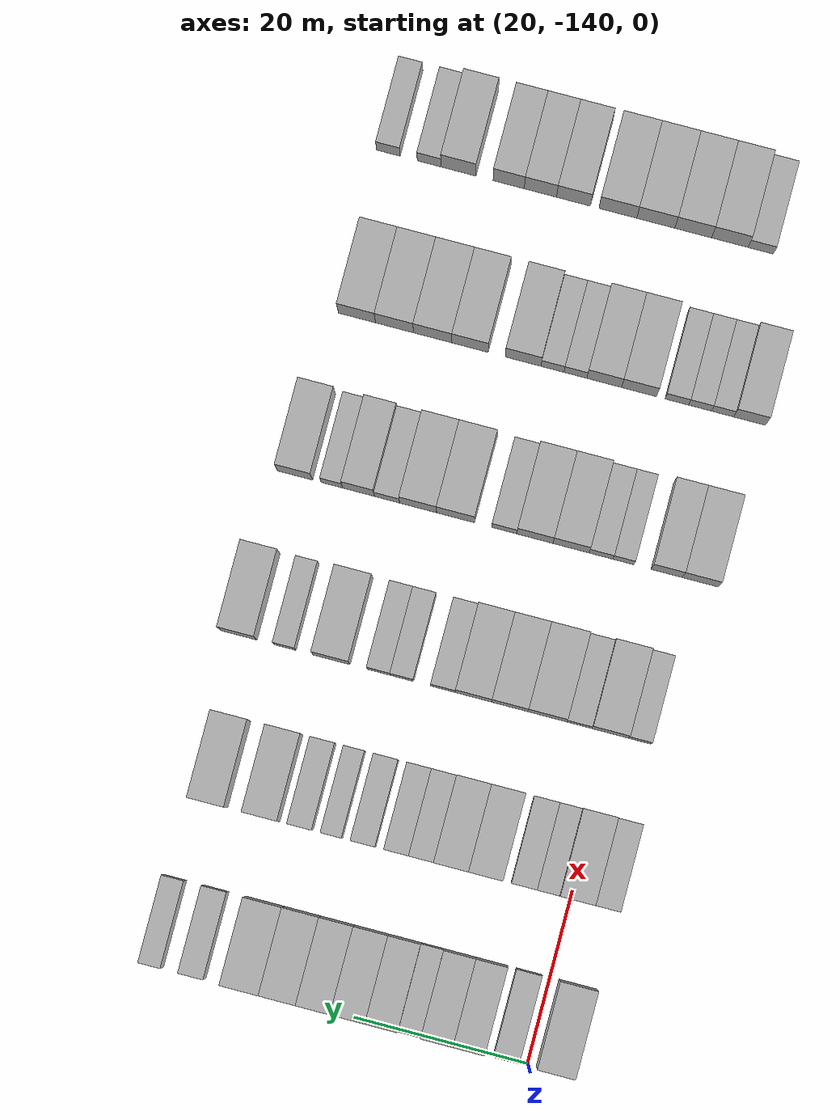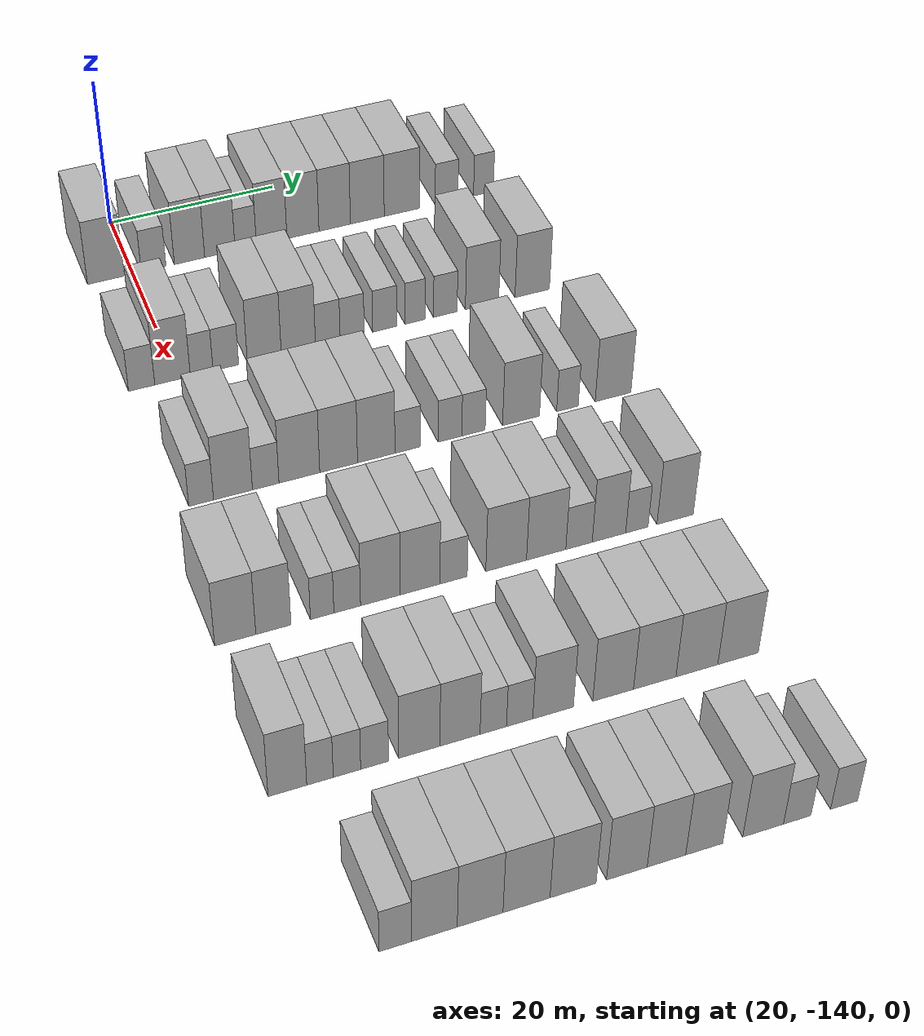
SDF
<sdf version="1.6">
 <world name="default">
  <model name="building_50">
   <static>1</static>
   <pose>25.0000 -143.1589 0 0.000000 0.000000 0.000000</pose>
   <link name="link">
    <pose>0 0 4.50 0 0 0</pose>
    <collision name="collision"><geometry><box><size>10.0000 4.3514 9.0000</size></box></geometry></collision>
    <visual name="visual">
     <cast_shadows>0</cast_shadows>
     <geometry><box><size>10.0000 4.3514 9.0000</size></box></geometry>
     <material>
      <script>
       <uri>model://HANNAS_wall/materials/scripts</uri>
       <uri>model://HANNAS_wall/materials/textures</uri>
       <name>vrc/HANNAS_wall</name>
      </script>
     </material>
    </visual>
   </link>
  </model>
  <model name="building_51">
   <static>1</static>
   <pose>25.0000 -137.5063 0 0.000000 0.000000 0.000000</pose>
   <link name="link">
    <pose>0 0 3.00 0 0 0</pose>
    <collision name="collision"><geometry><box><size>10.0000 2.9538 6.0000</size></box></geometry></collision>
    <visual name="visual">
     <cast_shadows>0</cast_shadows>
     <geometry><box><size>10.0000 2.9538 6.0000</size></box></geometry>
     <material>
      <script>
       <uri>model://HANNAS_wall/materials/scripts</uri>
       <uri>model://HANNAS_wall/materials/textures</uri>
       <name>vrc/HANNAS_wall</name>
      </script>
     </material>
    </visual>
   </link>
  </model>
  <model name="building_52">
   <static>1</static>
   <pose>25.0000 -133.2066 0 0.000000 0.000000 0.000000</pose>
   <link name="link">
    <pose>0 0 4.50 0 0 0</pose>
    <collision name="collision"><geometry><box><size>10.0000 3.6457 9.0000</size></box></geometry></collision>
    <visual name="visual">
     <cast_shadows>0</cast_shadows>
     <geometry><box><size>10.0000 3.6457 9.0000</size></box></geometry>
     <material>
      <script>
       <uri>model://HANNAS_wall/materials/scripts</uri>
       <uri>model://HANNAS_wall/materials/textures</uri>
       <name>vrc/HANNAS_wall</name>
      </script>
     </material>
    </visual>
   </link>
  </model>
  <model name="building_53">
   <static>1</static>
   <pose>25.0000 -129.5416 0 0.000000 0.000000 0.000000</pose>
   <link name="link">
    <pose>0 0 4.50 0 0 0</pose>
    <collision name="collision"><geometry><box><size>10.0000 3.6843 9.0000</size></box></geometry></collision>
    <visual name="visual">
     <cast_shadows>0</cast_shadows>
     <geometry><box><size>10.0000 3.6843 9.0000</size></box></geometry>
     <material>
      <script>
       <uri>model://HANNAS_wall/materials/scripts</uri>
       <uri>model://HANNAS_wall/materials/textures</uri>
       <name>vrc/HANNAS_wall</name>
      </script>
     </material>
    </visual>
   </link>
  </model>
  <model name="building_54">
   <static>1</static>
   <pose>25.0000 -126.4039 0 0.000000 0.000000 0.000000</pose>
   <link name="link">
    <pose>0 0 3.00 0 0 0</pose>
    <collision name="collision"><geometry><box><size>10.0000 2.5910 6.0000</size></box></geometry></collision>
    <visual name="visual">
     <cast_shadows>0</cast_shadows>
     <geometry><box><size>10.0000 2.5910 6.0000</size></box></geometry>
     <material>
      <script>
       <uri>model://HANNAS_wall/materials/scripts</uri>
       <uri>model://HANNAS_wall/materials/textures</uri>
       <name>vrc/HANNAS_wall</name>
      </script>
     </material>
    </visual>
   </link>
  </model>
  <model name="building_55">
   <static>1</static>
   <pose>25.0000 -123.2380 0 0.000000 0.000000 0.000000</pose>
   <link name="link">
    <pose>0 0 4.50 0 0 0</pose>
    <collision name="collision"><geometry><box><size>10.0000 3.7410 9.0000</size></box></geometry></collision>
    <visual name="visual">
     <cast_shadows>0</cast_shadows>
     <geometry><box><size>10.0000 3.7410 9.0000</size></box></geometry>
     <material>
      <script>
       <uri>model://HANNAS_wall/materials/scripts</uri>
       <uri>model://HANNAS_wall/materials/textures</uri>
       <name>vrc/HANNAS_wall</name>
      </script>
     </material>
    </visual>
   </link>
  </model>
  <model name="building_56">
   <static>1</static>
   <pose>25.0000 -119.3880 0 0.000000 0.000000 0.000000</pose>
   <link name="link">
    <pose>0 0 4.50 0 0 0</pose>
    <collision name="collision"><geometry><box><size>10.0000 3.9590 9.0000</size></box></geometry></collision>
    <visual name="visual">
     <cast_shadows>0</cast_shadows>
     <geometry><box><size>10.0000 3.9590 9.0000</size></box></geometry>
     <material>
      <script>
       <uri>model://HANNAS_wall/materials/scripts</uri>
       <uri>model://HANNAS_wall/materials/textures</uri>
       <name>vrc/HANNAS_wall</name>
      </script>
     </material>
    </visual>
   </link>
  </model>
  <model name="building_57">
   <static>1</static>
   <pose>25.0000 -115.4521 0 0.000000 0.000000 0.000000</pose>
   <link name="link">
    <pose>0 0 4.50 0 0 0</pose>
    <collision name="collision"><geometry><box><size>10.0000 3.9130 9.0000</size></box></geometry></collision>
    <visual name="visual">
     <cast_shadows>0</cast_shadows>
     <geometry><box><size>10.0000 3.9130 9.0000</size></box></geometry>
     <material>
      <script>
       <uri>model://HANNAS_wall/materials/scripts</uri>
       <uri>model://HANNAS_wall/materials/textures</uri>
       <name>vrc/HANNAS_wall</name>
      </script>
     </material>
    </visual>
   </link>
  </model>
  <model name="building_58">
   <static>1</static>
   <pose>25.0000 -111.3824 0 0.000000 0.000000 0.000000</pose>
   <link name="link">
    <pose>0 0 4.50 0 0 0</pose>
    <collision name="collision"><geometry><box><size>10.0000 4.2263 9.0000</size></box></geometry></collision>
    <visual name="visual">
     <cast_shadows>0</cast_shadows>
     <geometry><box><size>10.0000 4.2263 9.0000</size></box></geometry>
     <material>
      <script>
       <uri>model://HANNAS_wall/materials/scripts</uri>
       <uri>model://HANNAS_wall/materials/textures</uri>
       <name>vrc/HANNAS_wall</name>
      </script>
     </material>
    </visual>
   </link>
  </model>
  <model name="building_59">
   <static>1</static>
   <pose>25.0000 -107.0480 0 0.000000 0.000000 0.000000</pose>
   <link name="link">
    <pose>0 0 4.50 0 0 0</pose>
    <collision name="collision"><geometry><box><size>10.0000 4.4426 9.0000</size></box></geometry></collision>
    <visual name="visual">
     <cast_shadows>0</cast_shadows>
     <geometry><box><size>10.0000 4.4426 9.0000</size></box></geometry>
     <material>
      <script>
       <uri>model://HANNAS_wall/materials/scripts</uri>
       <uri>model://HANNAS_wall/materials/textures</uri>
       <name>vrc/HANNAS_wall</name>
      </script>
     </material>
    </visual>
   </link>
  </model>
  <model name="building_60">
   <static>1</static>
   <pose>25.0000 -101.3754 0 0.000000 0.000000 0.000000</pose>
   <link name="link">
    <pose>0 0 3.00 0 0 0</pose>
    <collision name="collision"><geometry><box><size>10.0000 2.9026 6.0000</size></box></geometry></collision>
    <visual name="visual">
     <cast_shadows>0</cast_shadows>
     <geometry><box><size>10.0000 2.9026 6.0000</size></box></geometry>
     <material>
      <script>
       <uri>model://HANNAS_wall/materials/scripts</uri>
       <uri>model://HANNAS_wall/materials/textures</uri>
       <name>vrc/HANNAS_wall</name>
      </script>
     </material>
    </visual>
   </link>
  </model>
  <model name="building_61">
   <static>1</static>
   <pose>25.0000 -96.6471 0 0.000000 0.000000 0.000000</pose>
   <link name="link">
    <pose>0 0 3.00 0 0 0</pose>
    <collision name="collision"><geometry><box><size>10.0000 2.5539 6.0000</size></box></geometry></collision>
    <visual name="visual">
     <cast_shadows>0</cast_shadows>
     <geometry><box><size>10.0000 2.5539 6.0000</size></box></geometry>
     <material>
      <script>
       <uri>model://HANNAS_wall/materials/scripts</uri>
       <uri>model://HANNAS_wall/materials/textures</uri>
       <name>vrc/HANNAS_wall</name>
      </script>
     </material>
    </visual>
   </link>
  </model>
  <model name="building_215">
   <static>1</static>
   <pose>44.0000 -144.1002 0 0.000000 0.000000 0.000000</pose>
   <link name="link">
    <pose>0 0 3.00 0 0 0</pose>
    <collision name="collision"><geometry><box><size>10.0000 2.9552 6.0000</size></box></geometry></collision>
    <visual name="visual">
     <cast_shadows>0</cast_shadows>
     <geometry><box><size>10.0000 2.9552 6.0000</size></box></geometry>
     <material>
      <script>
       <uri>model://HANNAS_wall/materials/scripts</uri>
       <uri>model://HANNAS_wall/materials/textures</uri>
       <name>vrc/HANNAS_wall</name>
      </script>
     </material>
    </visual>
   </link>
  </model>
  <model name="building_216">
   <static>1</static>
   <pose>44.0000 -140.6076 0 0.000000 0.000000 0.000000</pose>
   <link name="link">
    <pose>0 0 4.50 0 0 0</pose>
    <collision name="collision"><geometry><box><size>10.0000 4.0300 9.0000</size></box></geometry></collision>
    <visual name="visual">
     <cast_shadows>0</cast_shadows>
     <geometry><box><size>10.0000 4.0300 9.0000</size></box></geometry>
     <material>
      <script>
       <uri>model://HANNAS_wall/materials/scripts</uri>
       <uri>model://HANNAS_wall/materials/textures</uri>
       <name>vrc/HANNAS_wall</name>
      </script>
     </material>
    </visual>
   </link>
  </model>
  <model name="building_217">
   <static>1</static>
   <pose>44.0000 -137.3008 0 0.000000 0.000000 0.000000</pose>
   <link name="link">
    <pose>0 0 3.00 0 0 0</pose>
    <collision name="collision"><geometry><box><size>10.0000 2.5836 6.0000</size></box></geometry></collision>
    <visual name="visual">
     <cast_shadows>0</cast_shadows>
     <geometry><box><size>10.0000 2.5836 6.0000</size></box></geometry>
     <material>
      <script>
       <uri>model://HANNAS_wall/materials/scripts</uri>
       <uri>model://HANNAS_wall/materials/textures</uri>
       <name>vrc/HANNAS_wall</name>
      </script>
     </material>
    </visual>
   </link>
  </model>
  <model name="building_218">
   <static>1</static>
   <pose>44.0000 -134.5415 0 0.000000 0.000000 0.000000</pose>
   <link name="link">
    <pose>0 0 3.00 0 0 0</pose>
    <collision name="collision"><geometry><box><size>10.0000 2.9350 6.0000</size></box></geometry></collision>
    <visual name="visual">
     <cast_shadows>0</cast_shadows>
     <geometry><box><size>10.0000 2.9350 6.0000</size></box></geometry>
     <material>
      <script>
       <uri>model://HANNAS_wall/materials/scripts</uri>
       <uri>model://HANNAS_wall/materials/textures</uri>
       <name>vrc/HANNAS_wall</name>
      </script>
     </material>
    </visual>
   </link>
  </model>
  <model name="building_219">
   <static>1</static>
   <pose>44.0000 -130.1101 0 0.000000 0.000000 0.000000</pose>
   <link name="link">
    <pose>0 0 4.50 0 0 0</pose>
    <collision name="collision"><geometry><box><size>10.0000 3.9279 9.0000</size></box></geometry></collision>
    <visual name="visual">
     <cast_shadows>0</cast_shadows>
     <geometry><box><size>10.0000 3.9279 9.0000</size></box></geometry>
     <material>
      <script>
       <uri>model://HANNAS_wall/materials/scripts</uri>
       <uri>model://HANNAS_wall/materials/textures</uri>
       <name>vrc/HANNAS_wall</name>
      </script>
     </material>
    </visual>
   </link>
  </model>
  <model name="building_220">
   <static>1</static>
   <pose>44.0000 -126.1509 0 0.000000 0.000000 0.000000</pose>
   <link name="link">
    <pose>0 0 4.50 0 0 0</pose>
    <collision name="collision"><geometry><box><size>10.0000 3.9905 9.0000</size></box></geometry></collision>
    <visual name="visual">
     <cast_shadows>0</cast_shadows>
     <geometry><box><size>10.0000 3.9905 9.0000</size></box></geometry>
     <material>
      <script>
       <uri>model://HANNAS_wall/materials/scripts</uri>
       <uri>model://HANNAS_wall/materials/textures</uri>
       <name>vrc/HANNAS_wall</name>
      </script>
     </material>
    </visual>
   </link>
  </model>
  <model name="building_221">
   <static>1</static>
   <pose>44.0000 -122.7087 0 0.000000 0.000000 0.000000</pose>
   <link name="link">
    <pose>0 0 3.00 0 0 0</pose>
    <collision name="collision"><geometry><box><size>10.0000 2.8939 6.0000</size></box></geometry></collision>
    <visual name="visual">
     <cast_shadows>0</cast_shadows>
     <geometry><box><size>10.0000 2.8939 6.0000</size></box></geometry>
     <material>
      <script>
       <uri>model://HANNAS_wall/materials/scripts</uri>
       <uri>model://HANNAS_wall/materials/textures</uri>
       <name>vrc/HANNAS_wall</name>
      </script>
     </material>
    </visual>
   </link>
  </model>
  <model name="building_222">
   <static>1</static>
   <pose>44.0000 -119.8431 0 0.000000 0.000000 0.000000</pose>
   <link name="link">
    <pose>0 0 3.00 0 0 0</pose>
    <collision name="collision"><geometry><box><size>10.0000 2.8373 6.0000</size></box></geometry></collision>
    <visual name="visual">
     <cast_shadows>0</cast_shadows>
     <geometry><box><size>10.0000 2.8373 6.0000</size></box></geometry>
     <material>
      <script>
       <uri>model://HANNAS_wall/materials/scripts</uri>
       <uri>model://HANNAS_wall/materials/textures</uri>
       <name>vrc/HANNAS_wall</name>
      </script>
     </material>
    </visual>
   </link>
  </model>
  <model name="building_223">
   <static>1</static>
   <pose>44.0000 -116.0023 0 0.000000 0.000000 0.000000</pose>
   <link name="link">
    <pose>0 0 3.00 0 0 0</pose>
    <collision name="collision"><geometry><box><size>10.0000 2.8444 6.0000</size></box></geometry></collision>
    <visual name="visual">
     <cast_shadows>0</cast_shadows>
     <geometry><box><size>10.0000 2.8444 6.0000</size></box></geometry>
     <material>
      <script>
       <uri>model://HANNAS_wall/materials/scripts</uri>
       <uri>model://HANNAS_wall/materials/textures</uri>
       <name>vrc/HANNAS_wall</name>
      </script>
     </material>
    </visual>
   </link>
  </model>
  <model name="building_224">
   <static>1</static>
   <pose>44.0000 -112.3684 0 0.000000 0.000000 0.000000</pose>
   <link name="link">
    <pose>0 0 3.00 0 0 0</pose>
    <collision name="collision"><geometry><box><size>10.0000 2.4233 6.0000</size></box></geometry></collision>
    <visual name="visual">
     <cast_shadows>0</cast_shadows>
     <geometry><box><size>10.0000 2.4233 6.0000</size></box></geometry>
     <material>
      <script>
       <uri>model://HANNAS_wall/materials/scripts</uri>
       <uri>model://HANNAS_wall/materials/textures</uri>
       <name>vrc/HANNAS_wall</name>
      </script>
     </material>
    </visual>
   </link>
  </model>
  <model name="building_225">
   <static>1</static>
   <pose>44.0000 -108.7348 0 0.000000 0.000000 0.000000</pose>
   <link name="link">
    <pose>0 0 3.00 0 0 0</pose>
    <collision name="collision"><geometry><box><size>10.0000 2.8439 6.0000</size></box></geometry></collision>
    <visual name="visual">
     <cast_shadows>0</cast_shadows>
     <geometry><box><size>10.0000 2.8439 6.0000</size></box></geometry>
     <material>
      <script>
       <uri>model://HANNAS_wall/materials/scripts</uri>
       <uri>model://HANNAS_wall/materials/textures</uri>
       <name>vrc/HANNAS_wall</name>
      </script>
     </material>
    </visual>
   </link>
  </model>
  <model name="building_226">
   <static>1</static>
   <pose>44.0000 -104.2887 0 0.000000 0.000000 0.000000</pose>
   <link name="link">
    <pose>0 0 4.50 0 0 0</pose>
    <collision name="collision"><geometry><box><size>10.0000 4.0484 9.0000</size></box></geometry></collision>
    <visual name="visual">
     <cast_shadows>0</cast_shadows>
     <geometry><box><size>10.0000 4.0484 9.0000</size></box></geometry>
     <material>
      <script>
       <uri>model://HANNAS_wall/materials/scripts</uri>
       <uri>model://HANNAS_wall/materials/textures</uri>
       <name>vrc/HANNAS_wall</name>
      </script>
     </material>
    </visual>
   </link>
  </model>
  <model name="building_227">
   <static>1</static>
   <pose>44.0000 -98.1462 0 0.000000 0.000000 0.000000</pose>
   <link name="link">
    <pose>0 0 4.50 0 0 0</pose>
    <collision name="collision"><geometry><box><size>10.0000 4.2366 9.0000</size></box></geometry></collision>
    <visual name="visual">
     <cast_shadows>0</cast_shadows>
     <geometry><box><size>10.0000 4.2366 9.0000</size></box></geometry>
     <material>
      <script>
       <uri>model://HANNAS_wall/materials/scripts</uri>
       <uri>model://HANNAS_wall/materials/textures</uri>
       <name>vrc/HANNAS_wall</name>
      </script>
     </material>
    </visual>
   </link>
  </model>
  <model name="building_390">
   <static>1</static>
   <pose>63.0000 -142.9235 0 0.000000 0.000000 0.000000</pose>
   <link name="link">
    <pose>0 0 3.00 0 0 0</pose>
    <collision name="collision"><geometry><box><size>10.0000 2.6634 6.0000</size></box></geometry></collision>
    <visual name="visual">
     <cast_shadows>0</cast_shadows>
     <geometry><box><size>10.0000 2.6634 6.0000</size></box></geometry>
     <material>
      <script>
       <uri>model://HANNAS_wall/materials/scripts</uri>
       <uri>model://HANNAS_wall/materials/textures</uri>
       <name>vrc/HANNAS_wall</name>
      </script>
     </material>
    </visual>
   </link>
  </model>
  <model name="building_391">
   <static>1</static>
   <pose>63.0000 -139.4842 0 0.000000 0.000000 0.000000</pose>
   <link name="link">
    <pose>0 0 4.50 0 0 0</pose>
    <collision name="collision"><geometry><box><size>10.0000 4.2152 9.0000</size></box></geometry></collision>
    <visual name="visual">
     <cast_shadows>0</cast_shadows>
     <geometry><box><size>10.0000 4.2152 9.0000</size></box></geometry>
     <material>
      <script>
       <uri>model://HANNAS_wall/materials/scripts</uri>
       <uri>model://HANNAS_wall/materials/textures</uri>
       <name>vrc/HANNAS_wall</name>
      </script>
     </material>
    </visual>
   </link>
  </model>
  <model name="building_392">
   <static>1</static>
   <pose>63.0000 -135.9318 0 0.000000 0.000000 0.000000</pose>
   <link name="link">
    <pose>0 0 3.00 0 0 0</pose>
    <collision name="collision"><geometry><box><size>10.0000 2.8896 6.0000</size></box></geometry></collision>
    <visual name="visual">
     <cast_shadows>0</cast_shadows>
     <geometry><box><size>10.0000 2.8896 6.0000</size></box></geometry>
     <material>
      <script>
       <uri>model://HANNAS_wall/materials/scripts</uri>
       <uri>model://HANNAS_wall/materials/textures</uri>
       <name>vrc/HANNAS_wall</name>
      </script>
     </material>
    </visual>
   </link>
  </model>
  <model name="building_393">
   <static>1</static>
   <pose>63.0000 -132.2473 0 0.000000 0.000000 0.000000</pose>
   <link name="link">
    <pose>0 0 4.50 0 0 0</pose>
    <collision name="collision"><geometry><box><size>10.0000 4.4792 9.0000</size></box></geometry></collision>
    <visual name="visual">
     <cast_shadows>0</cast_shadows>
     <geometry><box><size>10.0000 4.4792 9.0000</size></box></geometry>
     <material>
      <script>
       <uri>model://HANNAS_wall/materials/scripts</uri>
       <uri>model://HANNAS_wall/materials/textures</uri>
       <name>vrc/HANNAS_wall</name>
      </script>
     </material>
    </visual>
   </link>
  </model>
  <model name="building_394">
   <static>1</static>
   <pose>63.0000 -127.9128 0 0.000000 0.000000 0.000000</pose>
   <link name="link">
    <pose>0 0 4.50 0 0 0</pose>
    <collision name="collision"><geometry><box><size>10.0000 4.1899 9.0000</size></box></geometry></collision>
    <visual name="visual">
     <cast_shadows>0</cast_shadows>
     <geometry><box><size>10.0000 4.1899 9.0000</size></box></geometry>
     <material>
      <script>
       <uri>model://HANNAS_wall/materials/scripts</uri>
       <uri>model://HANNAS_wall/materials/textures</uri>
       <name>vrc/HANNAS_wall</name>
      </script>
     </material>
    </visual>
   </link>
  </model>
  <model name="building_395">
   <static>1</static>
   <pose>63.0000 -123.7288 0 0.000000 0.000000 0.000000</pose>
   <link name="link">
    <pose>0 0 4.50 0 0 0</pose>
    <collision name="collision"><geometry><box><size>10.0000 4.1782 9.0000</size></box></geometry></collision>
    <visual name="visual">
     <cast_shadows>0</cast_shadows>
     <geometry><box><size>10.0000 4.1782 9.0000</size></box></geometry>
     <material>
      <script>
       <uri>model://HANNAS_wall/materials/scripts</uri>
       <uri>model://HANNAS_wall/materials/textures</uri>
       <name>vrc/HANNAS_wall</name>
      </script>
     </material>
    </visual>
   </link>
  </model>
  <model name="building_396">
   <static>1</static>
   <pose>63.0000 -120.2011 0 0.000000 0.000000 0.000000</pose>
   <link name="link">
    <pose>0 0 3.00 0 0 0</pose>
    <collision name="collision"><geometry><box><size>10.0000 2.8772 6.0000</size></box></geometry></collision>
    <visual name="visual">
     <cast_shadows>0</cast_shadows>
     <geometry><box><size>10.0000 2.8772 6.0000</size></box></geometry>
     <material>
      <script>
       <uri>model://HANNAS_wall/materials/scripts</uri>
       <uri>model://HANNAS_wall/materials/textures</uri>
       <name>vrc/HANNAS_wall</name>
      </script>
     </material>
    </visual>
   </link>
  </model>
  <model name="building_397">
   <static>1</static>
   <pose>63.0000 -115.4212 0 0.000000 0.000000 0.000000</pose>
   <link name="link">
    <pose>0 0 3.00 0 0 0</pose>
    <collision name="collision"><geometry><box><size>10.0000 2.6825 6.0000</size></box></geometry></collision>
    <visual name="visual">
     <cast_shadows>0</cast_shadows>
     <geometry><box><size>10.0000 2.6825 6.0000</size></box></geometry>
     <material>
      <script>
       <uri>model://HANNAS_wall/materials/scripts</uri>
       <uri>model://HANNAS_wall/materials/textures</uri>
       <name>vrc/HANNAS_wall</name>
      </script>
     </material>
    </visual>
   </link>
  </model>
  <model name="building_398">
   <static>1</static>
   <pose>63.0000 -112.7382 0 0.000000 0.000000 0.000000</pose>
   <link name="link">
    <pose>0 0 3.00 0 0 0</pose>
    <collision name="collision"><geometry><box><size>10.0000 2.6835 6.0000</size></box></geometry></collision>
    <visual name="visual">
     <cast_shadows>0</cast_shadows>
     <geometry><box><size>10.0000 2.6835 6.0000</size></box></geometry>
     <material>
      <script>
       <uri>model://HANNAS_wall/materials/scripts</uri>
       <uri>model://HANNAS_wall/materials/textures</uri>
       <name>vrc/HANNAS_wall</name>
      </script>
     </material>
    </visual>
   </link>
  </model>
  <model name="building_399">
   <static>1</static>
   <pose>63.0000 -107.2593 0 0.000000 0.000000 0.000000</pose>
   <link name="link">
    <pose>0 0 4.50 0 0 0</pose>
    <collision name="collision"><geometry><box><size>10.0000 4.2743 9.0000</size></box></geometry></collision>
    <visual name="visual">
     <cast_shadows>0</cast_shadows>
     <geometry><box><size>10.0000 4.2743 9.0000</size></box></geometry>
     <material>
      <script>
       <uri>model://HANNAS_wall/materials/scripts</uri>
       <uri>model://HANNAS_wall/materials/textures</uri>
       <name>vrc/HANNAS_wall</name>
      </script>
     </material>
    </visual>
   </link>
  </model>
  <model name="building_400">
   <static>1</static>
   <pose>63.0000 -101.8590 0 0.000000 0.000000 0.000000</pose>
   <link name="link">
    <pose>0 0 3.00 0 0 0</pose>
    <collision name="collision"><geometry><box><size>10.0000 2.5264 6.0000</size></box></geometry></collision>
    <visual name="visual">
     <cast_shadows>0</cast_shadows>
     <geometry><box><size>10.0000 2.5264 6.0000</size></box></geometry>
     <material>
      <script>
       <uri>model://HANNAS_wall/materials/scripts</uri>
       <uri>model://HANNAS_wall/materials/textures</uri>
       <name>vrc/HANNAS_wall</name>
      </script>
     </material>
    </visual>
   </link>
  </model>
  <model name="building_401">
   <static>1</static>
   <pose>63.0000 -96.4843 0 0.000000 0.000000 0.000000</pose>
   <link name="link">
    <pose>0 0 4.50 0 0 0</pose>
    <collision name="collision"><geometry><box><size>10.0000 4.2229 9.0000</size></box></geometry></collision>
    <visual name="visual">
     <cast_shadows>0</cast_shadows>
     <geometry><box><size>10.0000 4.2229 9.0000</size></box></geometry>
     <material>
      <script>
       <uri>model://HANNAS_wall/materials/scripts</uri>
       <uri>model://HANNAS_wall/materials/textures</uri>
       <name>vrc/HANNAS_wall</name>
      </script>
     </material>
    </visual>
   </link>
  </model>
  <model name="building_560">
   <static>1</static>
   <pose>82.0000 -145.0238 0 0.000000 0.000000 0.000000</pose>
   <link name="link">
    <pose>0 0 4.50 0 0 0</pose>
    <collision name="collision"><geometry><box><size>10.0000 4.1854 9.0000</size></box></geometry></collision>
    <visual name="visual">
     <cast_shadows>0</cast_shadows>
     <geometry><box><size>10.0000 4.1854 9.0000</size></box></geometry>
     <material>
      <script>
       <uri>model://HANNAS_wall/materials/scripts</uri>
       <uri>model://HANNAS_wall/materials/textures</uri>
       <name>vrc/HANNAS_wall</name>
      </script>
     </material>
    </visual>
   </link>
  </model>
  <model name="building_561">
   <static>1</static>
   <pose>82.0000 -141.1267 0 0.000000 0.000000 0.000000</pose>
   <link name="link">
    <pose>0 0 4.50 0 0 0</pose>
    <collision name="collision"><geometry><box><size>10.0000 3.6087 9.0000</size></box></geometry></collision>
    <visual name="visual">
     <cast_shadows>0</cast_shadows>
     <geometry><box><size>10.0000 3.6087 9.0000</size></box></geometry>
     <material>
      <script>
       <uri>model://HANNAS_wall/materials/scripts</uri>
       <uri>model://HANNAS_wall/materials/textures</uri>
       <name>vrc/HANNAS_wall</name>
      </script>
     </material>
    </visual>
   </link>
  </model>
  <model name="building_562">
   <static>1</static>
   <pose>82.0000 -136.1039 0 0.000000 0.000000 0.000000</pose>
   <link name="link">
    <pose>0 0 3.00 0 0 0</pose>
    <collision name="collision"><geometry><box><size>10.0000 2.4371 6.0000</size></box></geometry></collision>
    <visual name="visual">
     <cast_shadows>0</cast_shadows>
     <geometry><box><size>10.0000 2.4371 6.0000</size></box></geometry>
     <material>
      <script>
       <uri>model://HANNAS_wall/materials/scripts</uri>
       <uri>model://HANNAS_wall/materials/textures</uri>
       <name>vrc/HANNAS_wall</name>
      </script>
     </material>
    </visual>
   </link>
  </model>
  <model name="building_563">
   <static>1</static>
   <pose>82.0000 -133.4966 0 0.000000 0.000000 0.000000</pose>
   <link name="link">
    <pose>0 0 3.00 0 0 0</pose>
    <collision name="collision"><geometry><box><size>10.0000 2.7775 6.0000</size></box></geometry></collision>
    <visual name="visual">
     <cast_shadows>0</cast_shadows>
     <geometry><box><size>10.0000 2.7775 6.0000</size></box></geometry>
     <material>
      <script>
       <uri>model://HANNAS_wall/materials/scripts</uri>
       <uri>model://HANNAS_wall/materials/textures</uri>
       <name>vrc/HANNAS_wall</name>
      </script>
     </material>
    </visual>
   </link>
  </model>
  <model name="building_564">
   <static>1</static>
   <pose>82.0000 -130.0173 0 0.000000 0.000000 0.000000</pose>
   <link name="link">
    <pose>0 0 4.50 0 0 0</pose>
    <collision name="collision"><geometry><box><size>10.0000 4.1812 9.0000</size></box></geometry></collision>
    <visual name="visual">
     <cast_shadows>0</cast_shadows>
     <geometry><box><size>10.0000 4.1812 9.0000</size></box></geometry>
     <material>
      <script>
       <uri>model://HANNAS_wall/materials/scripts</uri>
       <uri>model://HANNAS_wall/materials/textures</uri>
       <name>vrc/HANNAS_wall</name>
      </script>
     </material>
    </visual>
   </link>
  </model>
  <model name="building_565">
   <static>1</static>
   <pose>82.0000 -125.8311 0 0.000000 0.000000 0.000000</pose>
   <link name="link">
    <pose>0 0 4.50 0 0 0</pose>
    <collision name="collision"><geometry><box><size>10.0000 4.1912 9.0000</size></box></geometry></collision>
    <visual name="visual">
     <cast_shadows>0</cast_shadows>
     <geometry><box><size>10.0000 4.1912 9.0000</size></box></geometry>
     <material>
      <script>
       <uri>model://HANNAS_wall/materials/scripts</uri>
       <uri>model://HANNAS_wall/materials/textures</uri>
       <name>vrc/HANNAS_wall</name>
      </script>
     </material>
    </visual>
   </link>
  </model>
  <model name="building_566">
   <static>1</static>
   <pose>82.0000 -122.2735 0 0.000000 0.000000 0.000000</pose>
   <link name="link">
    <pose>0 0 3.00 0 0 0</pose>
    <collision name="collision"><geometry><box><size>10.0000 2.9240 6.0000</size></box></geometry></collision>
    <visual name="visual">
     <cast_shadows>0</cast_shadows>
     <geometry><box><size>10.0000 2.9240 6.0000</size></box></geometry>
     <material>
      <script>
       <uri>model://HANNAS_wall/materials/scripts</uri>
       <uri>model://HANNAS_wall/materials/textures</uri>
       <name>vrc/HANNAS_wall</name>
      </script>
     </material>
    </visual>
   </link>
  </model>
  <model name="building_567">
   <static>1</static>
   <pose>82.0000 -116.6056 0 0.000000 0.000000 0.000000</pose>
   <link name="link">
    <pose>0 0 4.50 0 0 0</pose>
    <collision name="collision"><geometry><box><size>10.0000 4.4119 9.0000</size></box></geometry></collision>
    <visual name="visual">
     <cast_shadows>0</cast_shadows>
     <geometry><box><size>10.0000 4.4119 9.0000</size></box></geometry>
     <material>
      <script>
       <uri>model://HANNAS_wall/materials/scripts</uri>
       <uri>model://HANNAS_wall/materials/textures</uri>
       <name>vrc/HANNAS_wall</name>
      </script>
     </material>
    </visual>
   </link>
  </model>
  <model name="building_568">
   <static>1</static>
   <pose>82.0000 -112.2522 0 0.000000 0.000000 0.000000</pose>
   <link name="link">
    <pose>0 0 4.50 0 0 0</pose>
    <collision name="collision"><geometry><box><size>10.0000 4.2947 9.0000</size></box></geometry></collision>
    <visual name="visual">
     <cast_shadows>0</cast_shadows>
     <geometry><box><size>10.0000 4.2947 9.0000</size></box></geometry>
     <material>
      <script>
       <uri>model://HANNAS_wall/materials/scripts</uri>
       <uri>model://HANNAS_wall/materials/textures</uri>
       <name>vrc/HANNAS_wall</name>
      </script>
     </material>
    </visual>
   </link>
  </model>
  <model name="building_569">
   <static>1</static>
   <pose>82.0000 -108.6472 0 0.000000 0.000000 0.000000</pose>
   <link name="link">
    <pose>0 0 3.00 0 0 0</pose>
    <collision name="collision"><geometry><box><size>10.0000 2.9154 6.0000</size></box></geometry></collision>
    <visual name="visual">
     <cast_shadows>0</cast_shadows>
     <geometry><box><size>10.0000 2.9154 6.0000</size></box></geometry>
     <material>
      <script>
       <uri>model://HANNAS_wall/materials/scripts</uri>
       <uri>model://HANNAS_wall/materials/textures</uri>
       <name>vrc/HANNAS_wall</name>
      </script>
     </material>
    </visual>
   </link>
  </model>
  <model name="building_570">
   <static>1</static>
   <pose>82.0000 -105.3369 0 0.000000 0.000000 0.000000</pose>
   <link name="link">
    <pose>0 0 4.50 0 0 0</pose>
    <collision name="collision"><geometry><box><size>10.0000 3.7051 9.0000</size></box></geometry></collision>
    <visual name="visual">
     <cast_shadows>0</cast_shadows>
     <geometry><box><size>10.0000 3.7051 9.0000</size></box></geometry>
     <material>
      <script>
       <uri>model://HANNAS_wall/materials/scripts</uri>
       <uri>model://HANNAS_wall/materials/textures</uri>
       <name>vrc/HANNAS_wall</name>
      </script>
     </material>
    </visual>
   </link>
  </model>
  <model name="building_571">
   <static>1</static>
   <pose>82.0000 -102.2306 0 0.000000 0.000000 0.000000</pose>
   <link name="link">
    <pose>0 0 3.00 0 0 0</pose>
    <collision name="collision"><geometry><box><size>10.0000 2.5076 6.0000</size></box></geometry></collision>
    <visual name="visual">
     <cast_shadows>0</cast_shadows>
     <geometry><box><size>10.0000 2.5076 6.0000</size></box></geometry>
     <material>
      <script>
       <uri>model://HANNAS_wall/materials/scripts</uri>
       <uri>model://HANNAS_wall/materials/textures</uri>
       <name>vrc/HANNAS_wall</name>
      </script>
     </material>
    </visual>
   </link>
  </model>
  <model name="building_572">
   <static>1</static>
   <pose>82.0000 -97.9356 0 0.000000 0.000000 0.000000</pose>
   <link name="link">
    <pose>0 0 4.50 0 0 0</pose>
    <collision name="collision"><geometry><box><size>10.0000 4.0824 9.0000</size></box></geometry></collision>
    <visual name="visual">
     <cast_shadows>0</cast_shadows>
     <geometry><box><size>10.0000 4.0824 9.0000</size></box></geometry>
     <material>
      <script>
       <uri>model://HANNAS_wall/materials/scripts</uri>
       <uri>model://HANNAS_wall/materials/textures</uri>
       <name>vrc/HANNAS_wall</name>
      </script>
     </material>
    </visual>
   </link>
  </model>
  <model name="building_726">
   <static>1</static>
   <pose>101.0000 -145.8198 0 0.000000 0.000000 0.000000</pose>
   <link name="link">
    <pose>0 0 4.50 0 0 0</pose>
    <collision name="collision"><geometry><box><size>10.0000 3.7187 9.0000</size></box></geometry></collision>
    <visual name="visual">
     <cast_shadows>0</cast_shadows>
     <geometry><box><size>10.0000 3.7187 9.0000</size></box></geometry>
     <material>
      <script>
       <uri>model://HANNAS_wall/materials/scripts</uri>
       <uri>model://HANNAS_wall/materials/textures</uri>
       <name>vrc/HANNAS_wall</name>
      </script>
     </material>
    </visual>
   </link>
  </model>
  <model name="building_727">
   <static>1</static>
   <pose>101.0000 -142.6739 0 0.000000 0.000000 0.000000</pose>
   <link name="link">
    <pose>0 0 3.00 0 0 0</pose>
    <collision name="collision"><geometry><box><size>10.0000 2.5732 6.0000</size></box></geometry></collision>
    <visual name="visual">
     <cast_shadows>0</cast_shadows>
     <geometry><box><size>10.0000 2.5732 6.0000</size></box></geometry>
     <material>
      <script>
       <uri>model://HANNAS_wall/materials/scripts</uri>
       <uri>model://HANNAS_wall/materials/textures</uri>
       <name>vrc/HANNAS_wall</name>
      </script>
     </material>
    </visual>
   </link>
  </model>
  <model name="building_728">
   <static>1</static>
   <pose>101.0000 -140.0531 0 0.000000 0.000000 0.000000</pose>
   <link name="link">
    <pose>0 0 3.00 0 0 0</pose>
    <collision name="collision"><geometry><box><size>10.0000 2.6684 6.0000</size></box></geometry></collision>
    <visual name="visual">
     <cast_shadows>0</cast_shadows>
     <geometry><box><size>10.0000 2.6684 6.0000</size></box></geometry>
     <material>
      <script>
       <uri>model://HANNAS_wall/materials/scripts</uri>
       <uri>model://HANNAS_wall/materials/textures</uri>
       <name>vrc/HANNAS_wall</name>
      </script>
     </material>
    </visual>
   </link>
  </model>
  <model name="building_729">
   <static>1</static>
   <pose>101.0000 -137.3533 0 0.000000 0.000000 0.000000</pose>
   <link name="link">
    <pose>0 0 3.00 0 0 0</pose>
    <collision name="collision"><geometry><box><size>10.0000 2.7314 6.0000</size></box></geometry></collision>
    <visual name="visual">
     <cast_shadows>0</cast_shadows>
     <geometry><box><size>10.0000 2.7314 6.0000</size></box></geometry>
     <material>
      <script>
       <uri>model://HANNAS_wall/materials/scripts</uri>
       <uri>model://HANNAS_wall/materials/textures</uri>
       <name>vrc/HANNAS_wall</name>
      </script>
     </material>
    </visual>
   </link>
  </model>
  <model name="building_730">
   <static>1</static>
   <pose>101.0000 -132.9480 0 0.000000 0.000000 0.000000</pose>
   <link name="link">
    <pose>0 0 4.50 0 0 0</pose>
    <collision name="collision"><geometry><box><size>10.0000 4.0791 9.0000</size></box></geometry></collision>
    <visual name="visual">
     <cast_shadows>0</cast_shadows>
     <geometry><box><size>10.0000 4.0791 9.0000</size></box></geometry>
     <material>
      <script>
       <uri>model://HANNAS_wall/materials/scripts</uri>
       <uri>model://HANNAS_wall/materials/textures</uri>
       <name>vrc/HANNAS_wall</name>
      </script>
     </material>
    </visual>
   </link>
  </model>
  <model name="building_731">
   <static>1</static>
   <pose>101.0000 -128.8952 0 0.000000 0.000000 0.000000</pose>
   <link name="link">
    <pose>0 0 4.50 0 0 0</pose>
    <collision name="collision"><geometry><box><size>10.0000 4.0266 9.0000</size></box></geometry></collision>
    <visual name="visual">
     <cast_shadows>0</cast_shadows>
     <geometry><box><size>10.0000 4.0266 9.0000</size></box></geometry>
     <material>
      <script>
       <uri>model://HANNAS_wall/materials/scripts</uri>
       <uri>model://HANNAS_wall/materials/textures</uri>
       <name>vrc/HANNAS_wall</name>
      </script>
     </material>
    </visual>
   </link>
  </model>
  <model name="building_732">
   <static>1</static>
   <pose>101.0000 -125.5482 0 0.000000 0.000000 0.000000</pose>
   <link name="link">
    <pose>0 0 3.00 0 0 0</pose>
    <collision name="collision"><geometry><box><size>10.0000 2.6672 6.0000</size></box></geometry></collision>
    <visual name="visual">
     <cast_shadows>0</cast_shadows>
     <geometry><box><size>10.0000 2.6672 6.0000</size></box></geometry>
     <material>
      <script>
       <uri>model://HANNAS_wall/materials/scripts</uri>
       <uri>model://HANNAS_wall/materials/textures</uri>
       <name>vrc/HANNAS_wall</name>
      </script>
     </material>
    </visual>
   </link>
  </model>
  <model name="building_733">
   <static>1</static>
   <pose>101.0000 -122.8776 0 0.000000 0.000000 0.000000</pose>
   <link name="link">
    <pose>0 0 3.00 0 0 0</pose>
    <collision name="collision"><geometry><box><size>10.0000 2.6741 6.0000</size></box></geometry></collision>
    <visual name="visual">
     <cast_shadows>0</cast_shadows>
     <geometry><box><size>10.0000 2.6741 6.0000</size></box></geometry>
     <material>
      <script>
       <uri>model://HANNAS_wall/materials/scripts</uri>
       <uri>model://HANNAS_wall/materials/textures</uri>
       <name>vrc/HANNAS_wall</name>
      </script>
     </material>
    </visual>
   </link>
  </model>
  <model name="building_734">
   <static>1</static>
   <pose>101.0000 -119.4610 0 0.000000 0.000000 0.000000</pose>
   <link name="link">
    <pose>0 0 4.50 0 0 0</pose>
    <collision name="collision"><geometry><box><size>10.0000 4.1591 9.0000</size></box></geometry></collision>
    <visual name="visual">
     <cast_shadows>0</cast_shadows>
     <geometry><box><size>10.0000 4.1591 9.0000</size></box></geometry>
     <material>
      <script>
       <uri>model://HANNAS_wall/materials/scripts</uri>
       <uri>model://HANNAS_wall/materials/textures</uri>
       <name>vrc/HANNAS_wall</name>
      </script>
     </material>
    </visual>
   </link>
  </model>
  <model name="building_735">
   <static>1</static>
   <pose>101.0000 -113.2657 0 0.000000 0.000000 0.000000</pose>
   <link name="link">
    <pose>0 0 4.50 0 0 0</pose>
    <collision name="collision"><geometry><box><size>10.0000 4.2317 9.0000</size></box></geometry></collision>
    <visual name="visual">
     <cast_shadows>0</cast_shadows>
     <geometry><box><size>10.0000 4.2317 9.0000</size></box></geometry>
     <material>
      <script>
       <uri>model://HANNAS_wall/materials/scripts</uri>
       <uri>model://HANNAS_wall/materials/textures</uri>
       <name>vrc/HANNAS_wall</name>
      </script>
     </material>
    </visual>
   </link>
  </model>
  <model name="building_736">
   <static>1</static>
   <pose>101.0000 -108.9230 0 0.000000 0.000000 0.000000</pose>
   <link name="link">
    <pose>0 0 4.50 0 0 0</pose>
    <collision name="collision"><geometry><box><size>10.0000 4.4536 9.0000</size></box></geometry></collision>
    <visual name="visual">
     <cast_shadows>0</cast_shadows>
     <geometry><box><size>10.0000 4.4536 9.0000</size></box></geometry>
     <material>
      <script>
       <uri>model://HANNAS_wall/materials/scripts</uri>
       <uri>model://HANNAS_wall/materials/textures</uri>
       <name>vrc/HANNAS_wall</name>
      </script>
     </material>
    </visual>
   </link>
  </model>
  <model name="building_737">
   <static>1</static>
   <pose>101.0000 -104.4774 0 0.000000 0.000000 0.000000</pose>
   <link name="link">
    <pose>0 0 4.50 0 0 0</pose>
    <collision name="collision"><geometry><box><size>10.0000 4.4376 9.0000</size></box></geometry></collision>
    <visual name="visual">
     <cast_shadows>0</cast_shadows>
     <geometry><box><size>10.0000 4.4376 9.0000</size></box></geometry>
     <material>
      <script>
       <uri>model://HANNAS_wall/materials/scripts</uri>
       <uri>model://HANNAS_wall/materials/textures</uri>
       <name>vrc/HANNAS_wall</name>
      </script>
     </material>
    </visual>
   </link>
  </model>
  <model name="building_738">
   <static>1</static>
   <pose>101.0000 -100.0945 0 0.000000 0.000000 0.000000</pose>
   <link name="link">
    <pose>0 0 4.50 0 0 0</pose>
    <collision name="collision"><geometry><box><size>10.0000 4.3283 9.0000</size></box></geometry></collision>
    <visual name="visual">
     <cast_shadows>0</cast_shadows>
     <geometry><box><size>10.0000 4.3283 9.0000</size></box></geometry>
     <material>
      <script>
       <uri>model://HANNAS_wall/materials/scripts</uri>
       <uri>model://HANNAS_wall/materials/textures</uri>
       <name>vrc/HANNAS_wall</name>
      </script>
     </material>
    </visual>
   </link>
  </model>
  <model name="building_909">
   <static>1</static>
   <pose>120.0000 -142.1866 0 0.000000 0.000000 0.000000</pose>
   <link name="link">
    <pose>0 0 3.00 0 0 0</pose>
    <collision name="collision"><geometry><box><size>10.0000 2.9674 6.0000</size></box></geometry></collision>
    <visual name="visual">
     <cast_shadows>0</cast_shadows>
     <geometry><box><size>10.0000 2.9674 6.0000</size></box></geometry>
     <material>
      <script>
       <uri>model://HANNAS_wall/materials/scripts</uri>
       <uri>model://HANNAS_wall/materials/textures</uri>
       <name>vrc/HANNAS_wall</name>
      </script>
     </material>
    </visual>
   </link>
  </model>
  <model name="building_910">
   <static>1</static>
   <pose>120.0000 -138.5786 0 0.000000 0.000000 0.000000</pose>
   <link name="link">
    <pose>0 0 4.50 0 0 0</pose>
    <collision name="collision"><geometry><box><size>10.0000 4.2486 9.0000</size></box></geometry></collision>
    <visual name="visual">
     <cast_shadows>0</cast_shadows>
     <geometry><box><size>10.0000 4.2486 9.0000</size></box></geometry>
     <material>
      <script>
       <uri>model://HANNAS_wall/materials/scripts</uri>
       <uri>model://HANNAS_wall/materials/textures</uri>
       <name>vrc/HANNAS_wall</name>
      </script>
     </material>
    </visual>
   </link>
  </model>
  <model name="building_911">
   <static>1</static>
   <pose>120.0000 -134.3135 0 0.000000 0.000000 0.000000</pose>
   <link name="link">
    <pose>0 0 4.50 0 0 0</pose>
    <collision name="collision"><geometry><box><size>10.0000 4.2816 9.0000</size></box></geometry></collision>
    <visual name="visual">
     <cast_shadows>0</cast_shadows>
     <geometry><box><size>10.0000 4.2816 9.0000</size></box></geometry>
     <material>
      <script>
       <uri>model://HANNAS_wall/materials/scripts</uri>
       <uri>model://HANNAS_wall/materials/textures</uri>
       <name>vrc/HANNAS_wall</name>
      </script>
     </material>
    </visual>
   </link>
  </model>
  <model name="building_912">
   <static>1</static>
   <pose>120.0000 -129.9466 0 0.000000 0.000000 0.000000</pose>
   <link name="link">
    <pose>0 0 4.50 0 0 0</pose>
    <collision name="collision"><geometry><box><size>10.0000 4.4520 9.0000</size></box></geometry></collision>
    <visual name="visual">
     <cast_shadows>0</cast_shadows>
     <geometry><box><size>10.0000 4.4520 9.0000</size></box></geometry>
     <material>
      <script>
       <uri>model://HANNAS_wall/materials/scripts</uri>
       <uri>model://HANNAS_wall/materials/textures</uri>
       <name>vrc/HANNAS_wall</name>
      </script>
     </material>
    </visual>
   </link>
  </model>
  <model name="building_913">
   <static>1</static>
   <pose>120.0000 -125.5166 0 0.000000 0.000000 0.000000</pose>
   <link name="link">
    <pose>0 0 4.50 0 0 0</pose>
    <collision name="collision"><geometry><box><size>10.0000 4.4081 9.0000</size></box></geometry></collision>
    <visual name="visual">
     <cast_shadows>0</cast_shadows>
     <geometry><box><size>10.0000 4.4081 9.0000</size></box></geometry>
     <material>
      <script>
       <uri>model://HANNAS_wall/materials/scripts</uri>
       <uri>model://HANNAS_wall/materials/textures</uri>
       <name>vrc/HANNAS_wall</name>
      </script>
     </material>
    </visual>
   </link>
  </model>
  <model name="building_914">
   <static>1</static>
   <pose>120.0000 -120.3397 0 0.000000 0.000000 0.000000</pose>
   <link name="link">
    <pose>0 0 4.50 0 0 0</pose>
    <collision name="collision"><geometry><box><size>10.0000 3.9456 9.0000</size></box></geometry></collision>
    <visual name="visual">
     <cast_shadows>0</cast_shadows>
     <geometry><box><size>10.0000 3.9456 9.0000</size></box></geometry>
     <material>
      <script>
       <uri>model://HANNAS_wall/materials/scripts</uri>
       <uri>model://HANNAS_wall/materials/textures</uri>
       <name>vrc/HANNAS_wall</name>
      </script>
     </material>
    </visual>
   </link>
  </model>
  <model name="building_915">
   <static>1</static>
   <pose>120.0000 -116.4783 0 0.000000 0.000000 0.000000</pose>
   <link name="link">
    <pose>0 0 4.50 0 0 0</pose>
    <collision name="collision"><geometry><box><size>10.0000 3.7772 9.0000</size></box></geometry></collision>
    <visual name="visual">
     <cast_shadows>0</cast_shadows>
     <geometry><box><size>10.0000 3.7772 9.0000</size></box></geometry>
     <material>
      <script>
       <uri>model://HANNAS_wall/materials/scripts</uri>
       <uri>model://HANNAS_wall/materials/textures</uri>
       <name>vrc/HANNAS_wall</name>
      </script>
     </material>
    </visual>
   </link>
  </model>
  <model name="building_916">
   <static>1</static>
   <pose>120.0000 -112.7651 0 0.000000 0.000000 0.000000</pose>
   <link name="link">
    <pose>0 0 4.50 0 0 0</pose>
    <collision name="collision"><geometry><box><size>10.0000 3.6493 9.0000</size></box></geometry></collision>
    <visual name="visual">
     <cast_shadows>0</cast_shadows>
     <geometry><box><size>10.0000 3.6493 9.0000</size></box></geometry>
     <material>
      <script>
       <uri>model://HANNAS_wall/materials/scripts</uri>
       <uri>model://HANNAS_wall/materials/textures</uri>
       <name>vrc/HANNAS_wall</name>
      </script>
     </material>
    </visual>
   </link>
  </model>
  <model name="building_917">
   <static>1</static>
   <pose>120.0000 -106.8995 0 0.000000 0.000000 0.000000</pose>
   <link name="link">
    <pose>0 0 4.50 0 0 0</pose>
    <collision name="collision"><geometry><box><size>10.0000 4.0818 9.0000</size></box></geometry></collision>
    <visual name="visual">
     <cast_shadows>0</cast_shadows>
     <geometry><box><size>10.0000 4.0818 9.0000</size></box></geometry>
     <material>
      <script>
       <uri>model://HANNAS_wall/materials/scripts</uri>
       <uri>model://HANNAS_wall/materials/textures</uri>
       <name>vrc/HANNAS_wall</name>
      </script>
     </material>
    </visual>
   </link>
  </model>
  <model name="building_918">
   <static>1</static>
   <pose>120.0000 -103.4709 0 0.000000 0.000000 0.000000</pose>
   <link name="link">
    <pose>0 0 3.00 0 0 0</pose>
    <collision name="collision"><geometry><box><size>10.0000 2.7755 6.0000</size></box></geometry></collision>
    <visual name="visual">
     <cast_shadows>0</cast_shadows>
     <geometry><box><size>10.0000 2.7755 6.0000</size></box></geometry>
     <material>
      <script>
       <uri>model://HANNAS_wall/materials/scripts</uri>
       <uri>model://HANNAS_wall/materials/textures</uri>
       <name>vrc/HANNAS_wall</name>
      </script>
     </material>
    </visual>
   </link>
  </model>
  <model name="building_919">
   <static>1</static>
   <pose>120.0000 -98.7053 0 0.000000 0.000000 0.000000</pose>
   <link name="link">
    <pose>0 0 3.00 0 0 0</pose>
    <collision name="collision"><geometry><box><size>10.0000 2.7556 6.0000</size></box></geometry></collision>
    <visual name="visual">
     <cast_shadows>0</cast_shadows>
     <geometry><box><size>10.0000 2.7556 6.0000</size></box></geometry>
     <material>
      <script>
       <uri>model://HANNAS_wall/materials/scripts</uri>
       <uri>model://HANNAS_wall/materials/textures</uri>
       <name>vrc/HANNAS_wall</name>
      </script>
     </material>
    </visual>
   </link>
  </model>
 </world>
</sdf>
